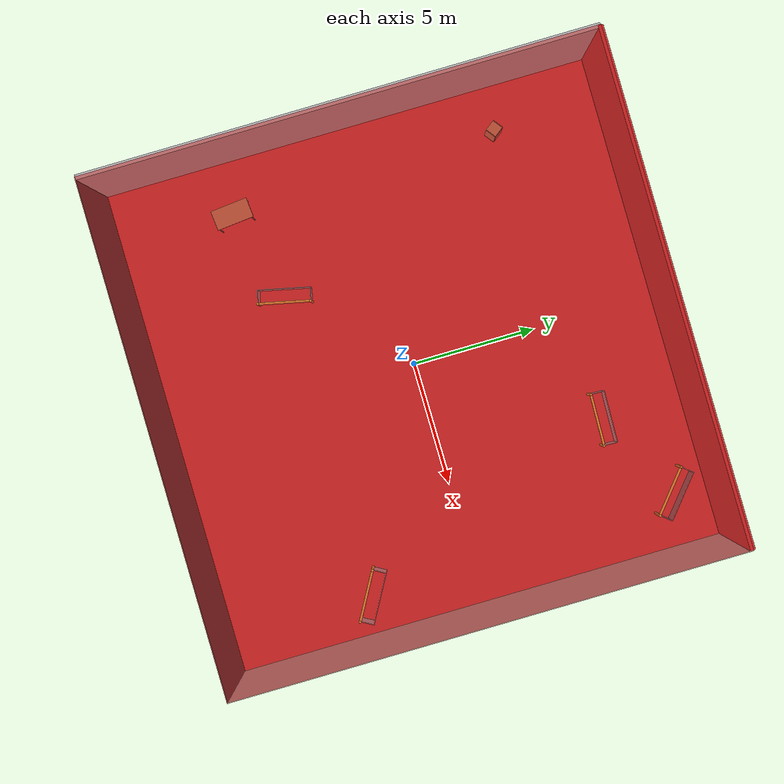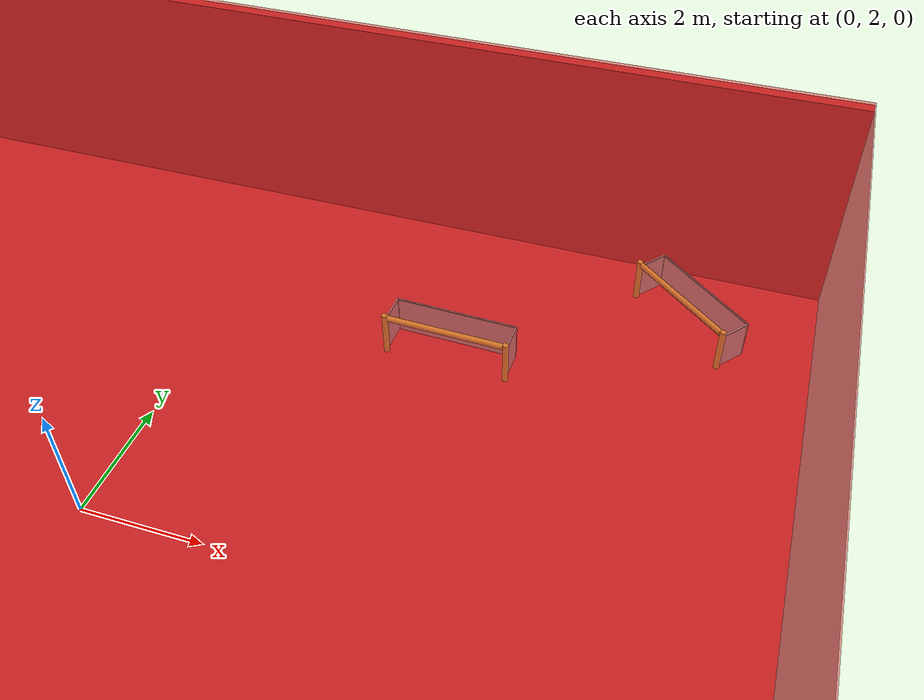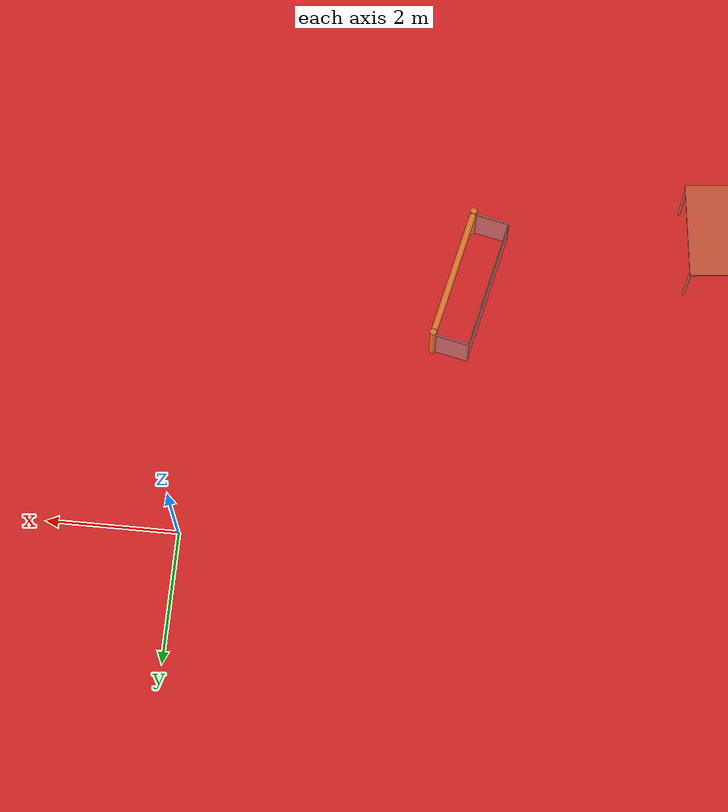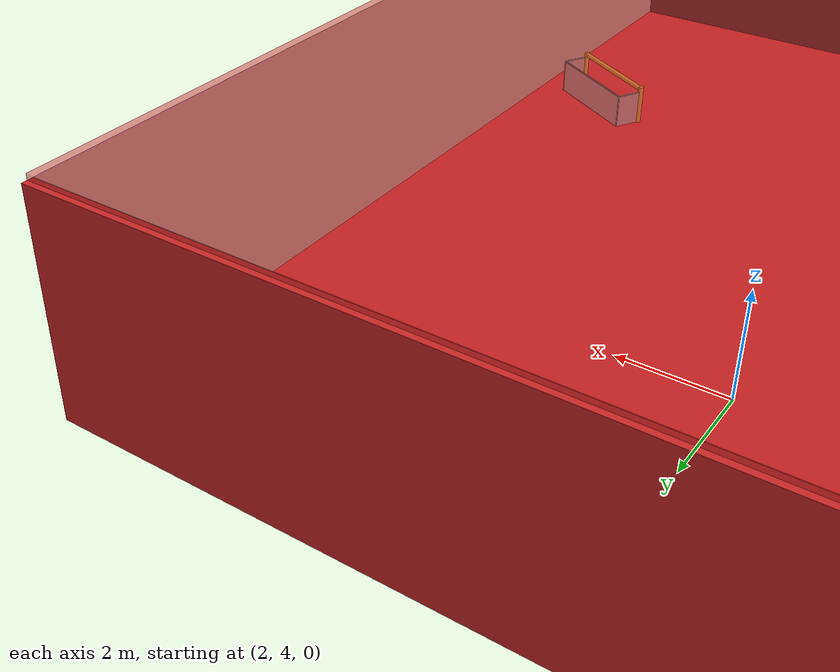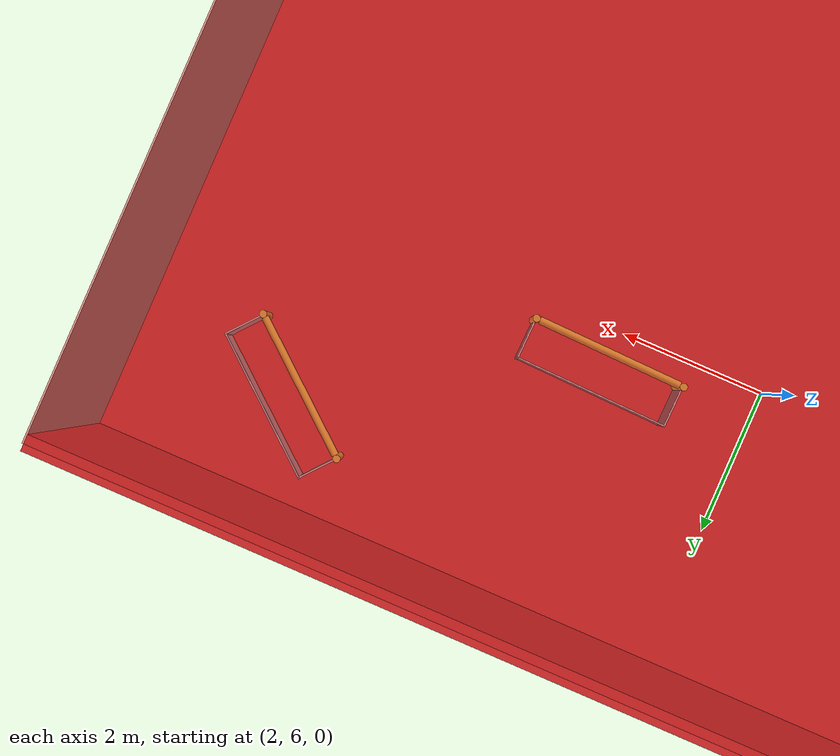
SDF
<sdf version="1.4">
 <world name="default">
  <physics type="ode">
   <max_step_size>0.001</max_step_size>
   <real_time_factor>1</real_time_factor>
   <real_time_update_rate>1000</real_time_update_rate>
   <gravity>0 0 -9.8</gravity>
  </physics>
  <scene><ambient>0.4 0.4 0.4 1</ambient><background>0.7 0.7 0.7 1</background><shadows>1</shadows></scene>
  <model name="Surrounding">
   <static>1</static>
   <link name="Ceiling">
    <collision name="Ceiling_Collision"><geometry><box><size>20 20 0.1</size></box></geometry></collision>
    <visual name="Ceiling_Visual">
     <geometry><box><size>20 20 0.1</size></box></geometry>
     <material>
      <script><uri>file://media/materials/scripts/gazebo.material</uri><name>Gazebo/RedTransparent</name></script>
     </material>
    </visual>
    <pose>0 0 4.05 0 0 0</pose>
   </link>
   <link name="Wall_South">
    <collision name="Wall_South_Collision">
     <geometry><box><size>20 0 4</size></box></geometry>
     <pose>0 0 2 0 -0 0</pose>
    </collision>
    <visual name="Wall_South_Visual">
     <pose>0 0 2 0 -0 0</pose>
     <geometry><box><size>20 0 4</size></box></geometry>
     <material>
      <script><uri>file://media/materials/scripts/gazebo.material</uri><name>Gazebo/FlatBlack</name></script>
     </material>
    </visual>
    <velocity_decay><linear>0</linear><angular>0</angular></velocity_decay>
    <pose>0 -10 0 0 -0 0</pose>
   </link>
   <link name="Wall_East">
    <collision name="Wall_21_Collision">
     <geometry><box><size>20 0 4</size></box></geometry>
     <pose>0 0 2 0 -0 0</pose>
    </collision>
    <visual name="Wall_21_Visual">
     <pose>0 0 2 0 -0 0</pose>
     <geometry><box><size>20 0 4</size></box></geometry>
     <material>
      <script><uri>file://media/materials/scripts/gazebo.material</uri><name>Gazebo/PaintedWall</name></script>
     </material>
    </visual>
    <velocity_decay><linear>0</linear><angular>0</angular></velocity_decay>
    <pose>10 0 0 0 -0 1.5708</pose>
   </link>
   <link name="Wall_North">
    <collision name="Wall_22_Collision">
     <geometry><box><size>20 0.2 4</size></box></geometry>
     <pose>0 0 2 0 -0 0</pose>
    </collision>
    <visual name="Wall_22_Visual">
     <pose>0 0 2 0 -0 0</pose>
     <geometry><box><size>20 0.2 4</size></box></geometry>
     <material>
      <script><uri>file://media/materials/scripts/gazebo.material</uri><name>Gazebo/RedBright</name></script>
     </material>
    </visual>
    <velocity_decay><linear>0</linear><angular>0</angular></velocity_decay>
    <pose>0 10 0 0 -0 0</pose>
   </link>
   <link name="Wall_West">
    <collision name="Wall_23_Collision">
     <geometry><box><size>20 0.2 4</size></box></geometry>
     <pose>0 0 2 0 -0 0</pose>
    </collision>
    <visual name="Wall_23_Visual">
     <pose>0 0 2 0 -0 0</pose>
     <geometry><box><size>20 0.2 4</size></box></geometry>
     <material>
      <script><uri>file://media/materials/scripts/gazebo.material</uri><name>Gazebo/LightOff</name></script>
     </material>
    </visual>
    <velocity_decay><linear>0</linear><angular>0</angular></velocity_decay>
    <pose>-10 0 0 0 0 -1.5708</pose>
   </link>
   <link name="Ground_link">
    <collision name="collision">
     <pose>0 0 .05 0 -0 0</pose>
     <geometry><box><size>20 20 0.1</size></box></geometry>
    </collision>
    <visual name="visual">
     <pose>0 0 .05 0 -0 0</pose>
     <geometry><box><size>20 20 0.1</size></box></geometry>
     <material>
      <script><uri>file://media/materials/scripts/gazebo.material</uri><name>Gazebo/RedBright</name></script>
     </material>
    </visual>
   </link>
   <static>1</static>
  </model>
  <spherical_coordinates>
   <surface_model>EARTH_WGS84</surface_model>
   <latitude_deg>0</latitude_deg>
   <longitude_deg>0</longitude_deg>
   <elevation>0</elevation>
   <heading_deg>0</heading_deg>
  </spherical_coordinates>
  <light name="lightball_0" type="diffuse">
   <diffuse>0.8 0.8 0.8 1</diffuse>
   <specular>0.2 0.2 0.2 1</specular>
   <attenuation>
    <range>100</range>
    <constant>0.7</constant>
    <linear>0.01</linear>
    <quadratic>0.001</quadratic>
   </attenuation>
   <direction>-0.5 0.1 -0.9</direction>
   <pose>-0.172451192294 0.612436823504 2.77103811461 0 0 0</pose>
  </light>
  <light name="lightball_1" type="diffuse">
   <diffuse>0.8 0.8 0.8 1</diffuse>
   <specular>0.2 0.2 0.2 1</specular>
   <attenuation>
    <range>100</range>
    <constant>0.7</constant>
    <linear>0.01</linear>
    <quadratic>0.001</quadratic>
   </attenuation>
   <direction>-0.5 0.1 -0.9</direction>
   <pose>-6.84295752393 -7.21596460739 1.66978036835 0 0 0</pose>
  </light>
  <light name="lightball_2" type="diffuse">
   <diffuse>0.8 0.8 0.8 1</diffuse>
   <specular>0.2 0.2 0.2 1</specular>
   <attenuation>
    <range>100</range>
    <constant>0.7</constant>
    <linear>0.01</linear>
    <quadratic>0.001</quadratic>
   </attenuation>
   <direction>-0.5 0.1 -0.9</direction>
   <pose>-5.86514123794 8.76703812217 0.567639829898 0 0 0</pose>
  </light>
  <light name="lightball_3" type="diffuse">
   <diffuse>0.8 0.8 0.8 1</diffuse>
   <specular>0.2 0.2 0.2 1</specular>
   <attenuation>
    <range>100</range>
    <constant>0.7</constant>
    <linear>0.01</linear>
    <quadratic>0.001</quadratic>
   </attenuation>
   <direction>-0.5 0.1 -0.9</direction>
   <pose>-5.88973545781 6.51400485267 2.51402121077 0 0 0</pose>
  </light>
  <light name="lightball_4" type="diffuse">
   <diffuse>0.8 0.8 0.8 1</diffuse>
   <specular>0.2 0.2 0.2 1</specular>
   <attenuation>
    <range>100</range>
    <constant>0.7</constant>
    <linear>0.01</linear>
    <quadratic>0.001</quadratic>
   </attenuation>
   <direction>-0.5 0.1 -0.9</direction>
   <pose>-2.25409214016 -4.63857900908 0.575063475596 0 0 0</pose>
  </light>
  <light name="lightball_5" type="diffuse">
   <diffuse>0.8 0.8 0.8 1</diffuse>
   <specular>0.2 0.2 0.2 1</specular>
   <attenuation>
    <range>100</range>
    <constant>0.7</constant>
    <linear>0.01</linear>
    <quadratic>0.001</quadratic>
   </attenuation>
   <direction>-0.5 0.1 -0.9</direction>
   <pose>-2.13982648813 -5.92206788917 0.732377744341 0 0 0</pose>
  </light>
  <light name="lightball_6" type="diffuse">
   <diffuse>0.8 0.8 0.8 1</diffuse>
   <specular>0.2 0.2 0.2 1</specular>
   <attenuation>
    <range>100</range>
    <constant>0.7</constant>
    <linear>0.01</linear>
    <quadratic>0.001</quadratic>
   </attenuation>
   <direction>-0.5 0.1 -0.9</direction>
   <pose>-6.96258559571 7.1907763208 3.0808057966 0 0 0</pose>
  </light>
  <include><uri>model://table</uri><pose>-7.67551853634 -5.25566124564 0 0 0 1.6670414938</pose></include>
  <include><uri>model://cabinet</uri><pose>-8.02989908594 5.62008428093 0 0 0 0.641486645627</pose></include>
  <include>
   <uri>model://robocup_3Dsim_goal</uri>
   <pose>-3.77140169909 -4.26385470228 0 0 0 2.92196619688</pose>
  </include>
  <include>
   <uri>model://robocup_3Dsim_goal</uri>
   <pose>4.17127845385 6.35016787957 0 0 0 1.54273902354</pose>
  </include>
  <include>
   <uri>model://robocup_3Dsim_goal</uri>
   <pose>8.30917201988 -4.38329264828 0 0 0 1.0566955013</pose>
  </include>
  <include>
   <uri>model://robocup_3Dsim_goal</uri>
   <pose>7.67821871352 8.34691935362 0 0 0 0.878268875073</pose>
  </include>
 </world>
</sdf>

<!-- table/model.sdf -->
<sdf version="1.5">
  <model name="table">
    <static>true</static>
    <link name="link">
      <collision name="surface">
        <pose>0 0 1.0 0 0 0</pose>
        <geometry>
          <box>
            <size>1.5 0.8 0.03</size>
          </box>
        </geometry>
        <surface>
          <friction>
            <ode>
              <mu>0.6</mu>
              <mu2>0.6</mu2>
            </ode>
          </friction>
        </surface>
      </collision>
      <visual name="visual1">
        <pose>0 0 1.0 0 0 0</pose>
        <geometry>
          <box>
            <size>1.5 0.8 0.03</size>
          </box>
        </geometry>
        <material>
          <script>
            <uri>model://media/materials/scripts/gazebo.material</uri>
            <name>Gazebo/Wood</name>
          </script>
        </material>
      </visual>
      <collision name="front_left_leg">
        <pose>0.68 0.38 0.5 0 0 0</pose>
        <geometry>
          <cylinder>
            <radius>0.02</radius>
            <length>1.0</length>
          </cylinder>
        </geometry>
      </collision>
      <visual name="front_left_leg">
        <pose>0.68 0.38 0.5 0 0 0</pose>
        <geometry>
          <cylinder>
            <radius>0.02</radius>
            <length>1.0</length>
          </cylinder>
        </geometry>
        <material>
          <script>
            <uri>model://media/materials/scripts/gazebo.material</uri>
            <name>Gazebo/Grey</name>
          </script>
        </material>
      </visual>
      <collision name="front_right_leg">
        <pose>0.68 -0.38 0.5 0 0 0</pose>
        <geometry>
          <cylinder>
            <radius>0.02</radius>
            <length>1.0</length>
          </cylinder>
        </geometry>
      </collision>
      <visual name="front_right_leg">
        <pose>0.68 -0.38 0.5 0 0 0</pose>
        <geometry>
          <cylinder>
            <radius>0.02</radius>
            <length>1.0</length>
          </cylinder>
        </geometry>
        <material>
          <script>
            <uri>model://media/materials/scripts/gazebo.material</uri>
            <name>Gazebo/Grey</name>
          </script>
        </material>
      </visual>
      <collision name="back_right_leg">
        <pose>-0.68 -0.38 0.5 0 0 0</pose>
        <geometry>
          <cylinder>
            <radius>0.02</radius>
            <length>1.0</length>
          </cylinder>
        </geometry>
      </collision>
      <visual name="back_right_leg">
        <pose>-0.68 -0.38 0.5 0 0 0</pose>
        <geometry>
          <cylinder>
            <radius>0.02</radius>
            <length>1.0</length>
          </cylinder>
        </geometry>
        <material>
          <script>
            <uri>model://media/materials/scripts/gazebo.material</uri>
            <name>Gazebo/Grey</name>
          </script>
        </material>
      </visual>
      <collision name="back_left_leg">
        <pose>-0.68 0.38 0.5 0 0 0</pose>
        <geometry>
          <cylinder>
            <radius>0.02</radius>
            <length>1.0</length>
          </cylinder>
        </geometry>
      </collision>
      <visual name="back_left_leg">
        <pose>-0.68 0.38 0.5 0 0 0</pose>
        <geometry>
          <cylinder>
            <radius>0.02</radius>
            <length>1.0</length>
          </cylinder>
        </geometry>
        <material>
          <script>
            <uri>model://media/materials/scripts/gazebo.material</uri>
            <name>Gazebo/Grey</name>
          </script>
        </material>
      </visual>
    </link>
  </model>
</sdf>

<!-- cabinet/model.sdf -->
<sdf version="1.5">
  <model name="cabinet">
    <static>true</static>
    <link name="cabinet_bottom_plate">
      <inertial>
        <pose>0 0 -1 0 0 0</pose>
        <inertia>
          <ixx>2.050000</ixx>
          <ixy>0</ixy>
          <ixz>0</ixz>
          <iyy>2.050000</iyy>
          <iyz>0</iyz>
          <izz>2.050000</izz>
        </inertia>
        <mass>25.000000</mass>
      </inertial>
      <collision name="cabinet_bottom_plate_geom">
        <pose>0 0 0.010000 0 0 0</pose>
        <geometry>
          <box>
            <size>0.450000 0.450000 0.020000</size>
          </box>
        </geometry>
      </collision>
      <visual name="cabinet_bottom_plate_geom_visual">
        <pose>0 0 0.010000 0 0 0</pose>
        <geometry>
          <box>
            <size>0.450000 0.450000 0.020000</size>
          </box>
        </geometry>
        <material>
          <script>
            <uri>model://media/materials/scripts/gazebo.material</uri>
            <name>Gazebo/Wood</name>
          </script>
        </material>
      </visual>
      <collision name="cabinet_bottom_plate_geom_cabinet_back_plate">
        <pose>0.235000 0 0.510000 0 0 0</pose>
        <geometry>
          <box>
            <size>0.020000 0.450000 1.020000</size>
          </box>
        </geometry>
      </collision>
      <visual name="cabinet_bottom_plate_geom_cabinet_back_plate_visual">
        <pose>0.235000 0 0.510000 0 0 0</pose>
        <geometry>
          <box>
            <size>0.020000 0.450000 1.020000</size>
          </box>
        </geometry>
        <material>
          <script>
            <uri>model://media/materials/scripts/gazebo.material</uri>
            <name>Gazebo/Wood</name>
          </script>
        </material>
      </visual>
      <collision name="cabinet_bottom_plate_geom_cabinet_left_plate">
        <pose>0 0.235000 0.510000 0 0 0</pose>
        <geometry>
          <box>
            <size>0.450000 0.020000 1.020000</size>
          </box>
        </geometry>
      </collision>
      <visual name="cabinet_bottom_plate_geom_cabinet_left_plate_visual">
        <pose>0 0.235000 0.510000 0 0 0</pose>
        <geometry>
          <box>
            <size>0.450000 0.020000 1.020000</size>
          </box>
        </geometry>
        <material>
          <script>
            <uri>model://media/materials/scripts/gazebo.material</uri>
            <name>Gazebo/Wood</name>
          </script>
        </material>
      </visual>
      <collision name="cabinet_bottom_plate_geom_cabinet_middle_plate">
        <pose>0 0 0.510000 0 0 0</pose>
        <geometry>
          <box>
            <size>0.450000 0.450000 0.020000</size>
          </box>
        </geometry>
      </collision>
      <visual name="cabinet_bottom_plate_geom_cabinet_middle_plate_visual">
        <pose>0 0 0.510000 0 0 0</pose>
        <geometry>
          <box>
            <size>0.450000 0.450000 0.020000</size>
          </box>
        </geometry>
        <material>
          <script>
            <uri>model://media/materials/scripts/gazebo.material</uri>
            <name>Gazebo/Wood</name>
          </script>
        </material>
      </visual>
      <collision name="cabinet_bottom_plate_geom_cabinet_right_plate">
        <pose>0 -0.235000 0.510000 0 0 0</pose>
        <geometry>
          <box>
            <size>0.450000 0.020000 1.020000</size>
          </box>
        </geometry>
      </collision>
      <visual name="cabinet_bottom_plate_geom_cabinet_right_plate_visual">
        <pose>0 -0.235000 0.510000 0 0 0</pose>
        <geometry>
          <box>
            <size>0.450000 0.020000 1.020000</size>
          </box>
        </geometry>
        <material>
          <script>
            <uri>model://media/materials/scripts/gazebo.material</uri>
            <name>Gazebo/Wood</name>
          </script>
        </material>
      </visual>
      <collision name="cabinet_bottom_plate_geom_cabinet_top_plate">
        <pose>0 0 1.010000 0 0 0</pose>
        <geometry>
          <box>
            <size>0.450000 0.450000 0.020000</size>
          </box>
        </geometry>
      </collision>
      <visual name="cabinet_bottom_plate_geom_cabinet_top_plate_visual">
        <pose>0 0 1.010000 0 0 0</pose>
        <geometry>
          <box>
            <size>0.450000 0.450000 0.020000</size>
          </box>
        </geometry>
        <material>
          <script>
            <uri>model://media/materials/scripts/gazebo.material</uri>
            <name>Gazebo/Wood</name>
          </script>
        </material>
      </visual>
    </link>
  </model>
</sdf>

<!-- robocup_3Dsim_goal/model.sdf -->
<sdf version="1.5">
  <model name="robocup_3d_goal">
    <static>true</static>
    <link name="left_post">
      <pose>0 1.05 0.45 0 0 0</pose>
      <collision name="collision">
        <geometry>
          <cylinder>
            <radius>0.05</radius>
            <length>0.9</length>
          </cylinder>
        </geometry>
      </collision>
      <visual name="visual">
        <geometry>
          <cylinder>
            <radius>0.05</radius>
            <length>0.9</length>
          </cylinder>
        </geometry>
        <material>
          <script>
            <uri>file://media/materials/scripts/gazebo.material</uri>
            <name>Gazebo/ZincYellow</name>
          </script>
        </material>
      </visual>
    </link>
    <link name="left_support_horiz_lower">
      <pose>0.30 1.05 0.01 0 0 0</pose>
      <collision name="collision">
        <geometry>
          <box>
            <size>0.50 0.02 0.02</size>
          </box>
        </geometry>
      </collision>
      <visual name="visual">
        <geometry>
          <box>
            <size>0.50 0.02 0.02</size>
          </box>
        </geometry>
        <material>
          <script>
            <uri>file://media/materials/scripts/gazebo.material</uri>
            <name>Gazebo/White</name>
          </script>
        </material>
      </visual>
    </link>
    <link name="left_support_horiz_upper">
      <pose>0.30 1.05 0.79 0 0 0</pose>
      <collision name="collision">
        <geometry>
          <box>
            <size>0.50 0.02 0.02</size>
          </box>
        </geometry>
      </collision>
      <visual name="visual">
        <geometry>
          <box>
            <size>0.50 0.02 0.02</size>
          </box>
        </geometry>
        <material>
          <script>
            <uri>file://media/materials/scripts/gazebo.material</uri>
            <name>Gazebo/White</name>
          </script>
        </material>
      </visual>
    </link>
    <link name="left_support_vertical">
      <pose>0.56 1.05 0.4 0 1.5708 0</pose>
      <collision name="collision">
        <geometry>
          <box>
            <size>0.80 0.02 0.02</size>
          </box>
        </geometry>
      </collision>
      <visual name="visual">
        <geometry>
          <box>
            <size>0.80 0.02 0.02</size>
          </box>
        </geometry>
        <material>
          <script>
            <uri>file://media/materials/scripts/gazebo.material</uri>
            <name>Gazebo/White</name>
          </script>
        </material>
      </visual>
    </link>
    <link name="right_support_horiz_lower">
      <pose>0.30 -1.05 0.01 0 0 0</pose>
      <collision name="collision">
        <geometry>
          <box>
            <size>0.50 0.02 0.02</size>
          </box>
        </geometry>
      </collision>
      <visual name="visual">
        <geometry>
          <box>
            <size>0.50 0.02 0.02</size>
          </box>
        </geometry>
        <material>
          <script>
            <uri>file://media/materials/scripts/gazebo.material</uri>
            <name>Gazebo/White</name>
          </script>
        </material>
      </visual>
    </link>
    <link name="right_support_horiz_upper">
      <pose>0.30 -1.05 0.79 0 0 0</pose>
      <collision name="collision">
        <geometry>
          <box>
            <size>0.50 0.02 0.02</size>
          </box>
        </geometry>
      </collision>
      <visual name="visual">
        <geometry>
          <box>
            <size>0.50 0.02 0.02</size>
          </box>
        </geometry>
        <material>
          <script>
            <uri>file://media/materials/scripts/gazebo.material</uri>
            <name>Gazebo/White</name>
          </script>
        </material>
      </visual>
    </link>
    <link name="right_support_vertical">
      <pose>0.56 -1.05 0.4 0 1.5708 0</pose>
      <collision name="collision">
        <geometry>
          <box>
            <size>0.80 0.02 0.02</size>
          </box>
        </geometry>
      </collision>
      <visual name="visual">
        <geometry>
          <box>
            <size>0.80 0.02 0.02</size>
          </box>
        </geometry>
        <material>
          <script>
            <uri>file://media/materials/scripts/gazebo.material</uri>
            <name>Gazebo/White</name>
          </script>
        </material>
      </visual>
    </link>
    <link name="center_support_horiz_lower">
      <pose>0.56 0 0.01 0 1.5708 0</pose>
      <collision name="collision">
        <geometry>
          <box>
            <size>0.02 2.08 0.02</size>
          </box>
        </geometry>
      </collision>
      <visual name="visual">
        <geometry>
          <box>
            <size>0.02 2.08 0.02</size>
          </box>
        </geometry>
        <material>
          <script>
            <uri>file://media/materials/scripts/gazebo.material</uri>
            <name>Gazebo/White</name>
          </script>
        </material>
      </visual>
    </link>
    <link name="center_support_horiz_upper">
      <pose>0.56 0 0.79 0 1.5708 0</pose>
      <collision name="collision">
        <geometry>
          <box>
            <size>0.02 2.08 0.02</size>
          </box>
        </geometry>
      </collision>
      <visual name="visual">
        <geometry>
          <box>
            <size>0.02 2.08 0.02</size>
          </box>
        </geometry>
        <material>
          <script>
            <uri>file://media/materials/scripts/gazebo.material</uri>
            <name>Gazebo/White</name>
          </script>
        </material>
      </visual>
    </link>
    <link name="right_post">
      <pose>0 -1.05 0.45 0 0 0</pose>
      <collision name="collision">
        <geometry>
          <cylinder>
            <radius>0.05</radius>
            <length>0.9</length>
          </cylinder>
        </geometry>
      </collision>
      <visual name="visual">
        <geometry>
          <cylinder>
            <radius>0.05</radius>
            <length>0.9</length>
          </cylinder>
        </geometry>
        <material>
          <script>
            <uri>file://media/materials/scripts/gazebo.material</uri>
            <name>Gazebo/ZincYellow</name>
          </script>
        </material>
      </visual>
    </link>
    <link name="crossbar">
      <pose>0 0 0.85 1.57 1.57 0</pose>
      <collision name="collision">
        <geometry>
          <cylinder>
            <radius>0.05</radius>
            <length>2.0</length>
          </cylinder>
        </geometry>
      </collision>
      <visual name="visual">
        <geometry>
          <cylinder>
            <radius>0.05</radius>
            <length>2.0</length>
          </cylinder>
        </geometry>
        <material>
          <script>
            <uri>file://media/materials/scripts/gazebo.material</uri>
            <name>Gazebo/ZincYellow</name>
          </script>
        </material>
      </visual>
    </link>
    <link name="center_net">
      <pose>0.56 0 0.40 0 0 0</pose>
      <collision name="collision">
        <geometry>
          <box>
            <size>0.01 2.1 0.80</size>
          </box>
        </geometry>
      </collision>
      <visual name="visual">
        <geometry>
          <box>
            <size>0.01 2.1 0.80</size>
          </box>
        </geometry>
        <material>
          <script>
            <uri>model://../model_source/models/robocup09_spl_field/materials/scripts/</uri>
            <uri>model://../model_source/models/robocup09_spl_field/materials/textures/</uri>
            <name>RoboCup/Net</name>
          </script>
        </material>
      </visual>
    </link>
    <link name="left_net">
      <pose>0.30 1.05 0.40 0 0 0</pose>
      <collision name="collision">
        <geometry>
          <box>
            <size>0.50 0.01 0.76</size>
          </box>
        </geometry>
      </collision>
      <visual name="visual">
        <geometry>
          <box>
            <size>0.50 0.01 0.76</size>
          </box>
        </geometry>
        <material>
          <script>
            <uri>model://../model_source/models/robocup09_spl_field/materials/scripts/</uri>
            <uri>model://../model_source/models/robocup09_spl_field/materials/textures/</uri>
            <name>RoboCup/Net</name>
          </script>
        </material>
      </visual>
    </link>
    <link name="right_net">
      <pose>0.30 -1.05 0.40 0 0 0</pose>
      <collision name="collision">
        <geometry>
          <box>
            <size>0.50 0.01 0.76</size>
          </box>
        </geometry>
      </collision>
      <visual name="visual">
        <geometry>
          <box>
            <size>0.50 0.01 0.76</size>
          </box>
        </geometry>
        <material>
          <script>
            <uri>model://../model_source/models/robocup09_spl_field/materials/scripts/</uri>
            <uri>model://../model_source/models/robocup09_spl_field/materials/textures/</uri>
            <name>RoboCup/Net</name>
          </script>
        </material>
      </visual>
    </link>
  </model>
</sdf>
